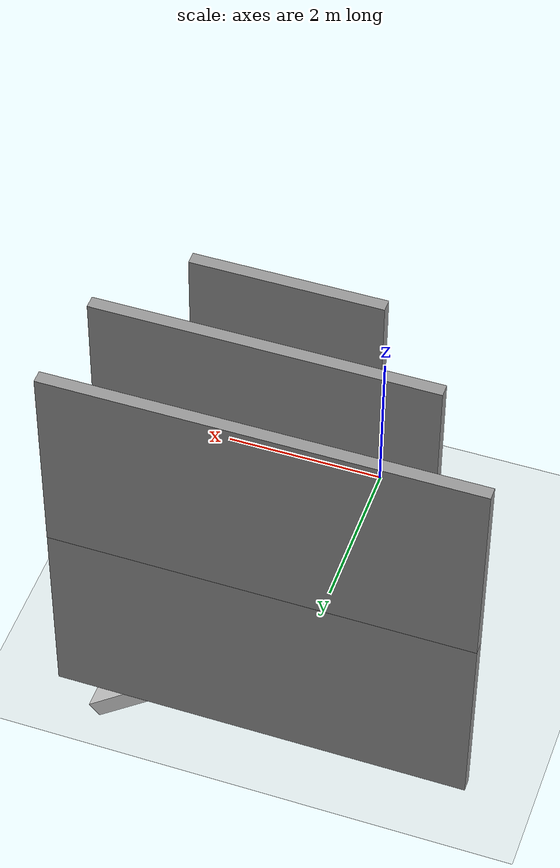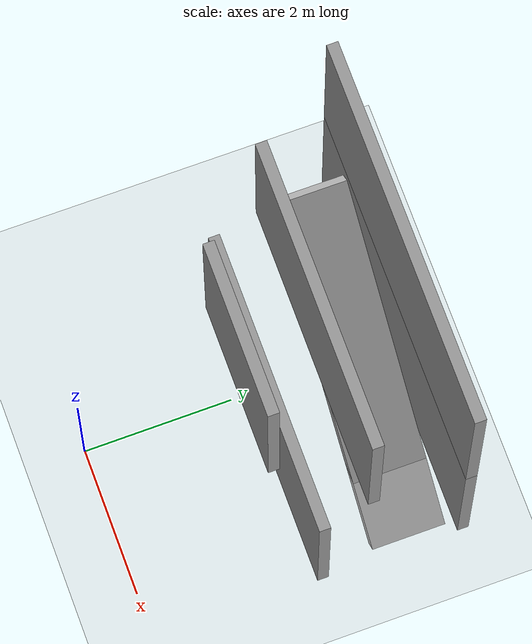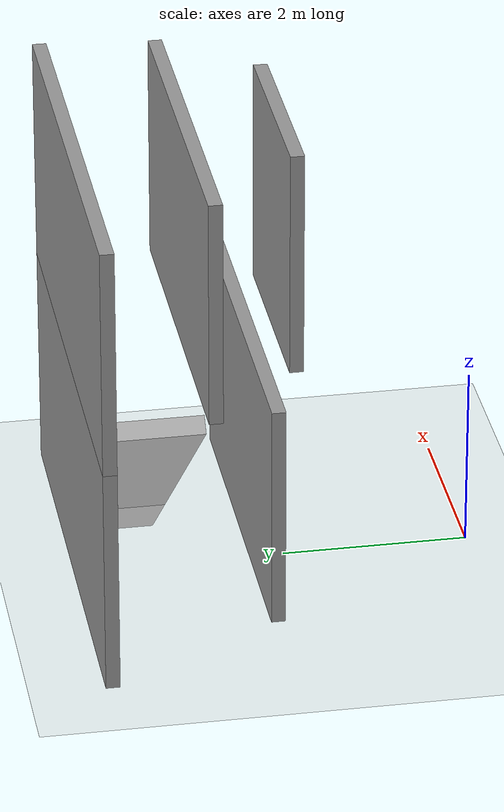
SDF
<sdf version="1.7">
 <world name="default">
  <model name="ground_plane">
   <static>1</static>
   <link name="link">
    <collision name="collision">
     <geometry><plane><normal>0 0 1</normal><size>100 100</size></plane></geometry>
     <surface>
      <contact><collide_bitmask>65535</collide_bitmask></contact>
      <friction><ode><mu>100</mu><mu2>50</mu2></ode></friction>
     </surface>
    </collision>
    <visual name="visual">
     <cast_shadows>0</cast_shadows>
     <geometry><plane><normal>0 0 1</normal><size>100 100</size></plane></geometry>
     <material>
      <script><uri>file://media/materials/scripts/gazebo.material</uri><name>Gazebo/Grey</name></script>
     </material>
    </visual>
   </link>
  </model>
  <model name="box">
   <static>1</static>
   <pose>0.369809 3.58329 0.898381 0 0.707317 0</pose>
   <link name="link">
    <collision name="collision"><geometry><box><size>5 1 0.2</size></box></geometry></collision>
    <visual name="visual"><geometry><box><size>5 1 0.2</size></box></geometry></visual>
   </link>
  </model>
  <model name="test2">
   <pose>-0.713184 1.43074 0 0 -0 1.57047</pose>
   <link name="Wall_38">
    <collision name="Wall_38_Collision">
     <geometry><box><size>5 0.15 2.5</size></box></geometry>
     <pose>0 0 1.25 0 -0 0</pose>
    </collision>
    <visual name="Wall_38_Visual">
     <pose>0 0 1.25 0 -0 0</pose>
     <geometry><box><size>5 0.15 2.5</size></box></geometry>
     <material>
      <script><uri>file://media/materials/scripts/gazebo.material</uri><name>Gazebo/Grey</name></script>
      <ambient>1 1 1 1</ambient>
     </material>
     <meta><layer>0</layer></meta>
    </visual>
    <pose>2.76211 -0.828418 0 0 -0 1.5708</pose>
   </link>
   <link name="Wall_48">
    <collision name="Wall_48_Collision">
     <geometry><box><size>4 0.15 2.5</size></box></geometry>
     <pose>0 0 1.25 0 -0 0</pose>
    </collision>
    <visual name="Wall_48_Visual">
     <pose>0 0 1.25 0 -0 0</pose>
     <geometry><box><size>4 0.15 2.5</size></box></geometry>
     <material>
      <script><uri>file://media/materials/scripts/gazebo.material</uri><name>Gazebo/Grey</name></script>
      <ambient>1 1 1 1</ambient>
     </material>
     <meta><layer>0</layer></meta>
    </visual>
    <pose>0.859691 -1.33602 0 0 -0 -1.5708</pose>
   </link>
   <link name="Wall_52">
    <collision name="Wall_52_Collision">
     <geometry><box><size>5 0.15 2.5</size></box></geometry>
     <pose>0 0 1.25 0 -0 0</pose>
    </collision>
    <visual name="Wall_52_Visual">
     <pose>0 0 1.25 0 -0 0</pose>
     <geometry><box><size>5 0.15 2.5</size></box></geometry>
     <material>
      <script><uri>file://media/materials/scripts/gazebo.material</uri><name>Gazebo/Grey</name></script>
      <ambient>1 1 1 1</ambient>
     </material>
     <meta><layer>1</layer></meta>
    </visual>
    <pose>2.76211 -0.828418 2.5 0 -0 1.5708</pose>
   </link>
   <link name="Wall_61">
    <collision name="Wall_61_Collision">
     <geometry><box><size>4 0.15 2.5</size></box></geometry>
     <pose>0 0 1.25 0 -0 0</pose>
    </collision>
    <visual name="Wall_61_Visual">
     <pose>0 0 1.25 0 -0 0</pose>
     <geometry><box><size>4 0.15 2.5</size></box></geometry>
     <material>
      <script><uri>file://media/materials/scripts/gazebo.material</uri><name>Gazebo/Grey</name></script>
      <ambient>1 1 1 1</ambient>
     </material>
     <meta><layer>1</layer></meta>
    </visual>
    <pose>1.53412 -1.21497 2.5 0 -0 -1.5708</pose>
   </link>
   <link name="Wall_67">
    <collision name="Wall_67_Collision">
     <geometry><box><size>2.25 0.15 2.5</size></box></geometry>
     <pose>0 0 1.25 0 -0 0</pose>
    </collision>
    <visual name="Wall_67_Visual">
     <pose>0 0 1.25 0 -0 0</pose>
     <geometry><box><size>2.25 0.15 2.5</size></box></geometry>
     <material>
      <script><uri>file://media/materials/scripts/gazebo.material</uri><name>Gazebo/Grey</name></script>
      <ambient>1 1 1 1</ambient>
     </material>
     <meta><layer>1</layer></meta>
    </visual>
    <pose>0.527602 -1.29979 2.5 0 -0 -1.5708</pose>
   </link>
   <static>1</static>
  </model>
 </world>
</sdf>
